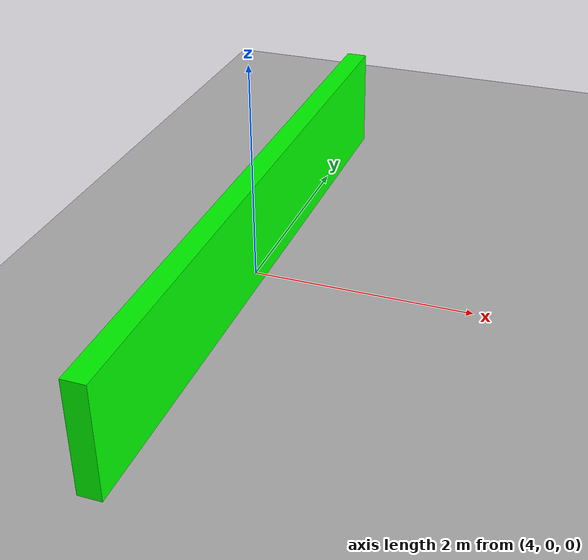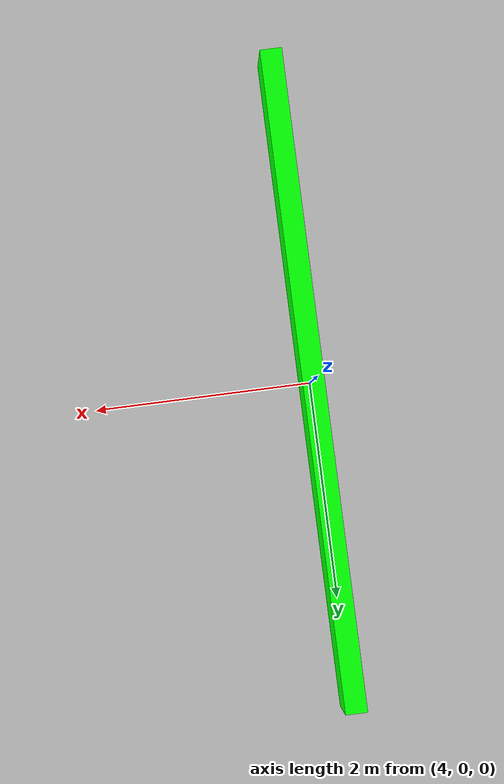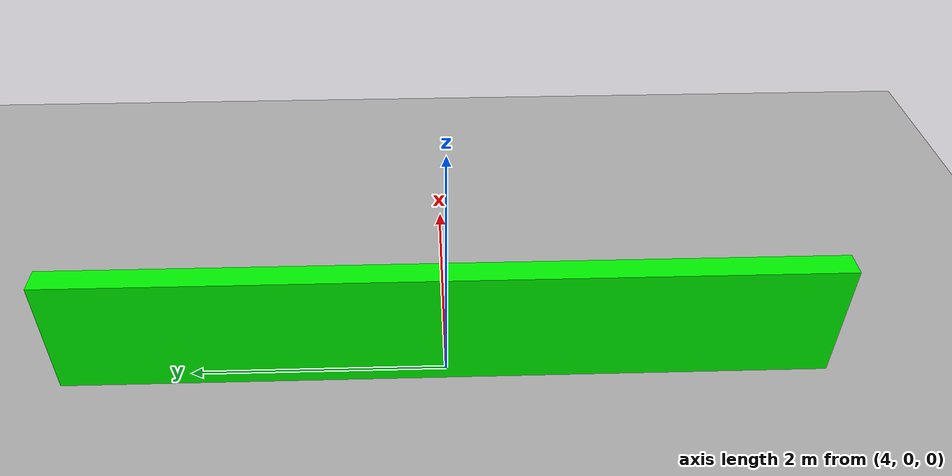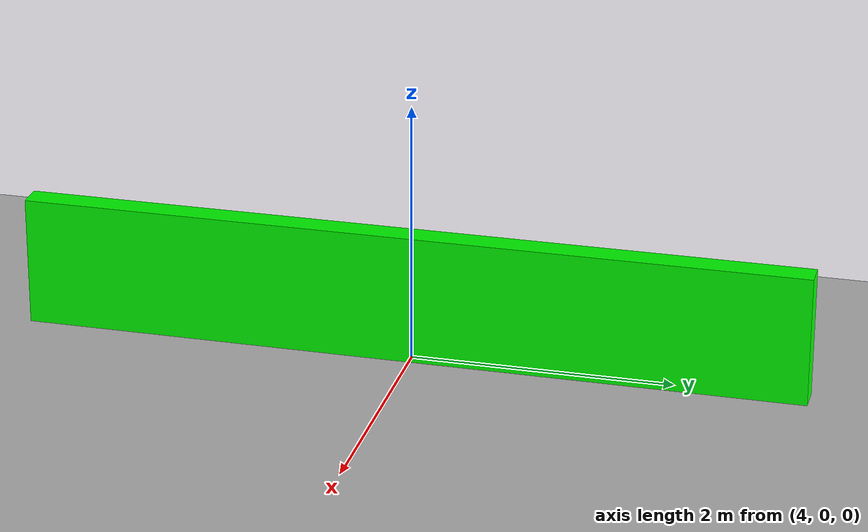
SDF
<?xml version="1.0" ?>
<sdf version="1.8">
  <world name="newcastle_world">

    <plugin filename="ignition-gazebo-physics-system" name="ignition::gazebo::systems::Physics"/>
    <plugin filename="ignition-gazebo-user-commands-system" name="ignition::gazebo::systems::UserCommands"/>
    <plugin filename="ignition-gazebo-scene-broadcaster-system" name="ignition::gazebo::systems::SceneBroadcaster"/>

    <plugin filename="ignition-gazebo-sensors-system" name="ignition::gazebo::systems::Sensors">
      <render_engine>ogre2</render_engine>
    </plugin>

    <light type="directional" name="sun">
      <cast_shadows>true</cast_shadows>
      <pose>0 0 10 0 0 0</pose>
      <diffuse>0.8 0.8 0.8 1</diffuse>
      <specular>0.2 0.2 0.2 1</specular>
    </light>

    <model name="ground_plane">
      <static>true</static>
      <link name="link">
        <collision name="collision">
          <geometry><plane><normal>0 0 1</normal></plane></geometry>
        </collision>
        <visual name="visual">
          <geometry><plane><normal>0 0 1</normal></plane></geometry>
          <material>
            <ambient>0.3 0.3 0.3 1</ambient>
            <diffuse>0.7 0.7 0.7 1</diffuse>
          </material>
        </visual>
      </link>
    </model>

    <model name="test_wall">
      <static>true</static>
      <pose>4 0 0.5 0 0 0</pose>
      <link name="link">
        <visual name="visual">
          <geometry><box><size>0.2 6 1</size></box></geometry>
          <material><ambient>0 1 0 1</ambient><diffuse>0 1 0 1</diffuse></material>
        </visual>
        <collision name="collision">
          <geometry><box><size>0.2 6 1</size></box></geometry>
        </collision>
      </link>
    </model>

  </world>
</sdf>
